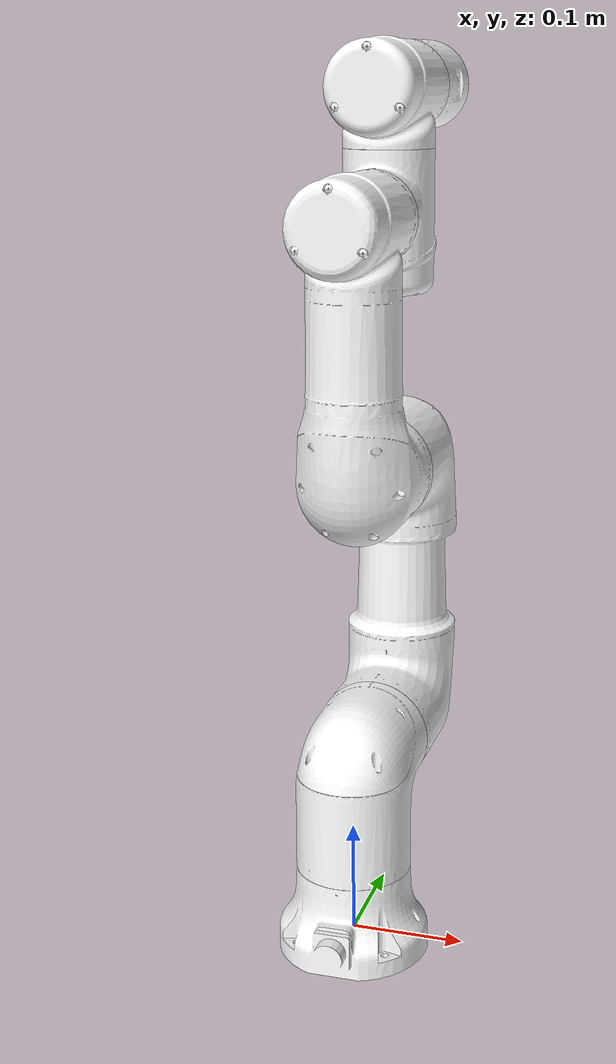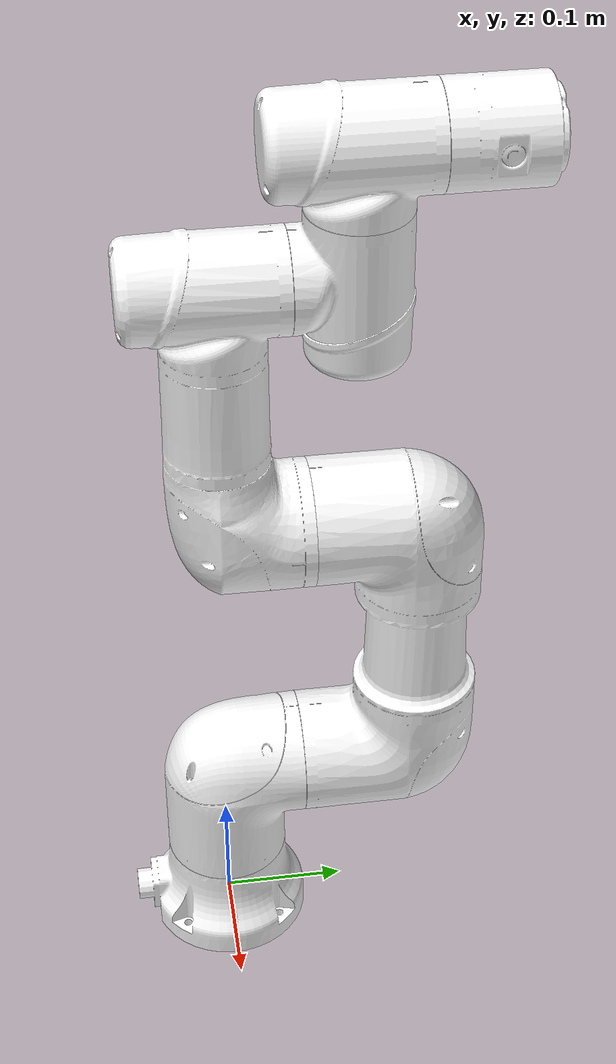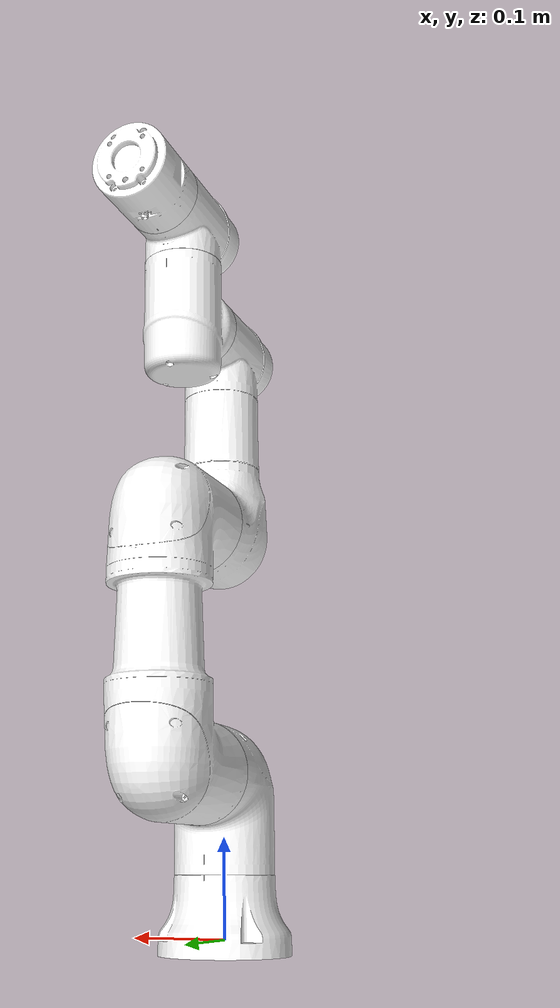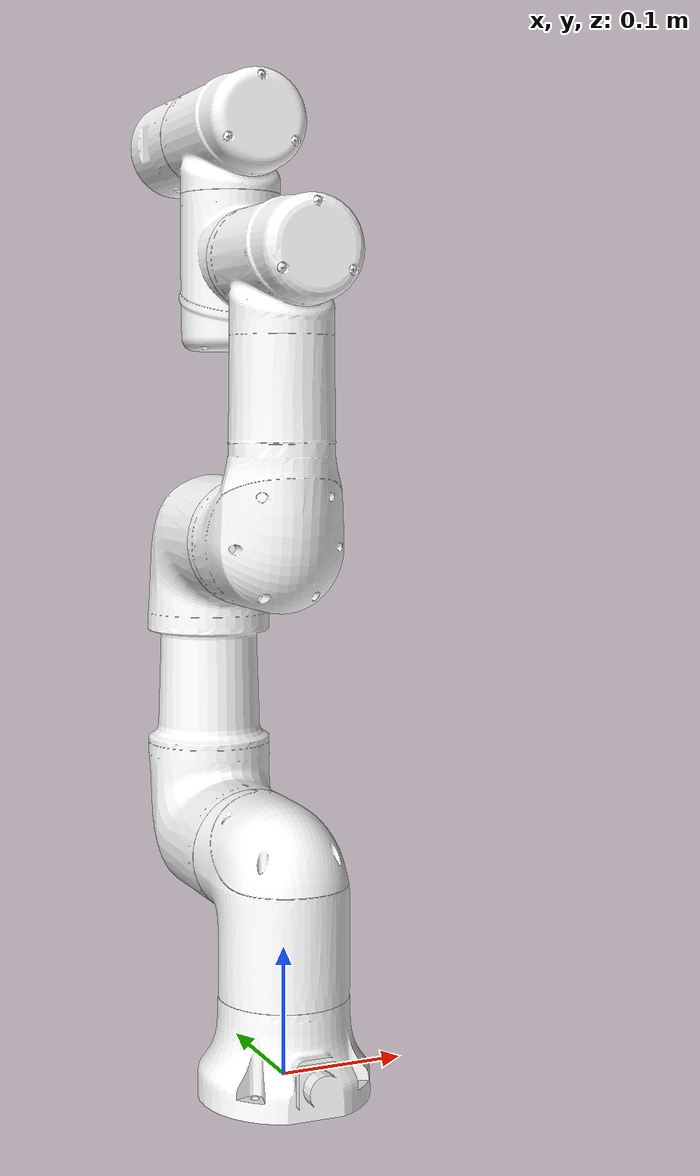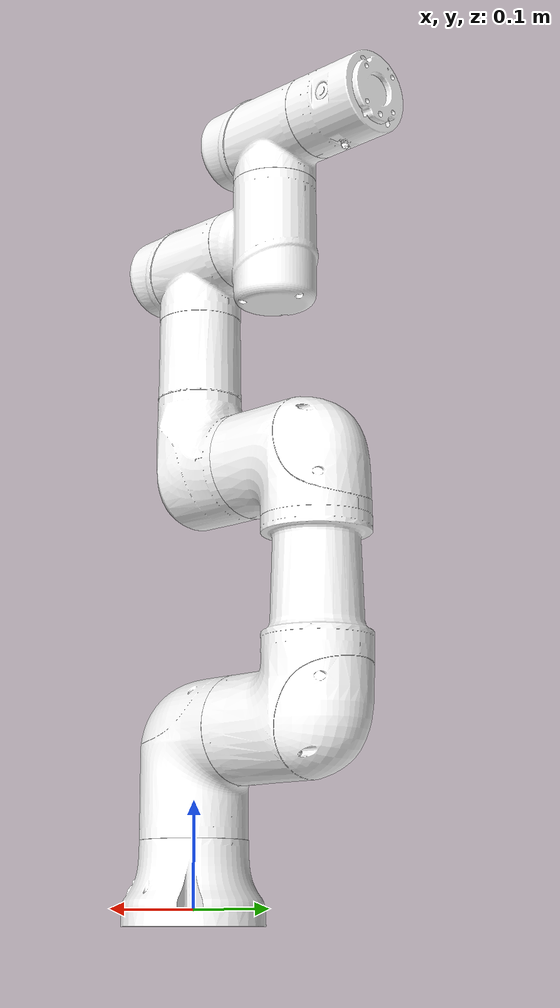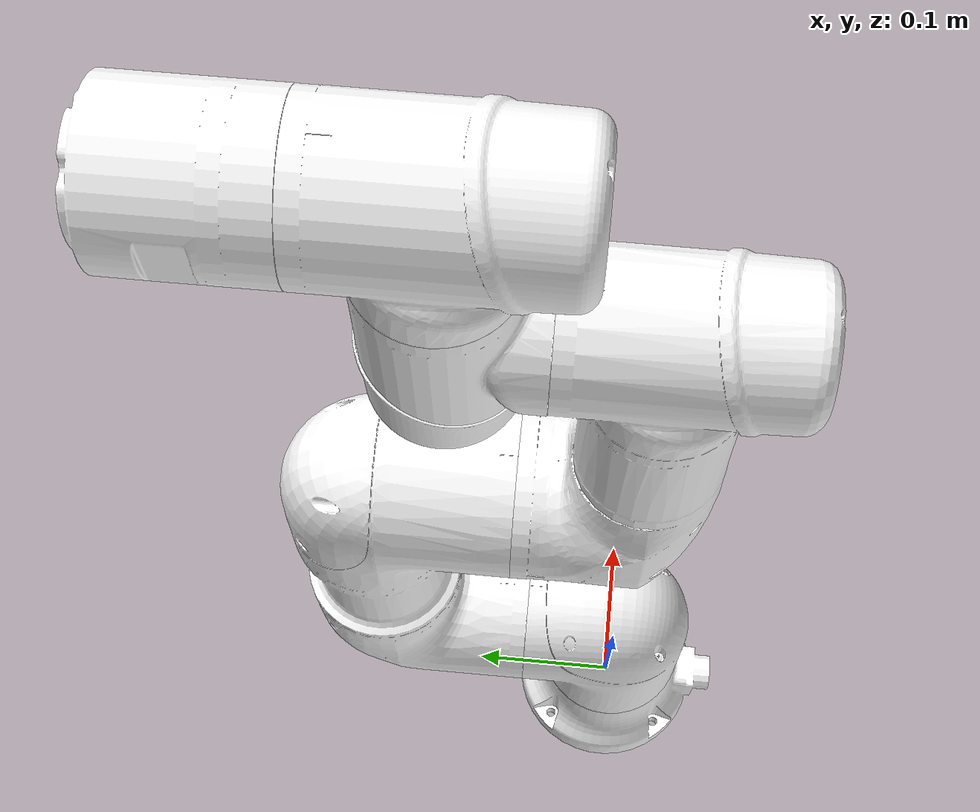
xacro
<?xml version="1.0"?>
<robot xmlns:xacro="http://www.ros.org/wiki/xacro" name="s3_60_eco_2024">
    <xacro:arg name="initial_positions_file" default="initial_positions.yaml" />

    <!-- Import s3_60_eco_2024 urdf file -->
    <xacro:include filename="$(find s3_60_eco_2024)/urdf/s3_60_eco_2024.urdf" />

    <!-- Import control_xacro -->
    <xacro:include filename="s3_60_eco_2024.ros2_control.xacro" />

    <xacro:s3_60_eco_2024_ros2_control name="FakeSystem" initial_positions_file="$(arg initial_positions_file)"/>

</robot>

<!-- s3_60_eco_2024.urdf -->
<robot
  name="s3_60_eco_2024">

  <!-- Fixed joint connecting base_footprint to base_link -->
  <link
    name="base_link">
    <inertial>
      <origin
        xyz="0 -0 0"
        rpy="0 0 0" />
      <mass
        value="0.78541" />
      <inertia
        ixx="0.0010933"
        ixy="3.2853E-08"
        ixz="-1.7363E-07"
        iyy="0.0010241"
        iyz="1.1425E-06"
        izz="0.0014616" />
    </inertial>
    <visual>
      <origin
        xyz="0 0 0"
        rpy="0 0 0" />
      <geometry>
        <mesh
          filename="package://s3_60_eco_2024/meshes/base_link.STL" />
      </geometry>
      <material
        name="">
        <color
          rgba="1 1 1 1" />
      </material>
    </visual>
    <collision>
      <origin
        xyz="0 0 0"
        rpy="0 0 0" />
      <geometry>
        <mesh
          filename="package://s3_60_eco_2024/meshes/base_link.STL" />
      </geometry>
    </collision>
  </link>
  <link
    name="link1">
    <inertial>
      <origin
        xyz="0 0.01736 -0.03468"
        rpy="0 0 0" />
      <mass
        value="2.68" />
      <inertia
        ixx="0.0063062"
        ixy="1E-13"
        ixz="4E-14"
        iyy="0.0063062"
        iyz="-5.47E-12"
        izz="3.8604E-09" />
    </inertial>
    <visual>
      <origin
        xyz="0 0 0"
        rpy="0 0 0" />
      <geometry>
        <mesh
          filename="package://s3_60_eco_2024/meshes/link1.STL" />
      </geometry>
      <material
        name="">
        <color
          rgba="1 1 1 1" />
      </material>
    </visual>
    <collision>
      <origin
        xyz="0 0 0"
        rpy="0 0 0" />
      <geometry>
        <mesh
          filename="package://s3_60_eco_2024/meshes/link1.STL" />
      </geometry>
    </collision>
  </link>
  <joint
    name="joint1"
    type="revolute">
    <origin
      xyz="0 0 0.1612"
      rpy="0 0 0" />
    <parent
      link="base_link" />
    <child
      link="link1" />
    <axis
      xyz="0 0 1" />
    <limit
      lower="-3.49"
      upper="3.49"
      effort="1000"
      velocity="100" />
  </joint>
  <link
    name="link2">
    <inertial>
      <origin
        xyz="0.164358816 -0.003811846 -0.036830158"
        rpy="0 0 0" />
      <mass
        value="4.91000729" />
      <inertia
        ixx="0.03174634313"
        ixy="-0.0133850739"
        ixz="0.02099061606"
        iyy="0.04209164764"
        iyz="0.01439168907"
        izz="0.0286995883" />
    </inertial>
    <visual>
      <origin
        xyz="0 0 0"
        rpy="0 0 0" />
      <geometry>
        <mesh
          filename="package://s3_60_eco_2024/meshes/link2.STL" />
      </geometry>
      <material
        name="">
        <color
          rgba="1 1 1 1" />
      </material>
    </visual>
    <collision>
      <origin
        xyz="0 0 0"
        rpy="0 0 0" />
      <geometry>
        <mesh
          filename="package://s3_60_eco_2024/meshes/link2.STL" />
      </geometry>
    </collision>
  </link>
  <joint
    name="joint2"
    type="revolute">
    <origin
      xyz="0 0.1625 0"
      rpy="-1.5708 -1.5708 -0" />
    <parent
      link="link1" />
    <child
      link="link2" />
    <axis
      xyz="0 0 1" />
    <limit
      lower="-3.49"
      upper="3.49"
      effort="1000"
      velocity="100" />
  </joint>
  <link
    name="link3">
    <inertial>
      <origin
        xyz="0.14259 0.0041909 0.019663"
        rpy="0 0 0" />
      <mass
        value="2.8189" />
      <inertia
        ixx="0.010113"
        ixy="-0.004051"
        ixz="0.013325"
        iyy="0.028438"
        iyz="0.0028144"
        izz="0.020036" />
    </inertial>
    <visual>
      <origin
        xyz="0 0 0"
        rpy="0 0 0" />
      <geometry>
        <mesh
          filename="package://s3_60_eco_2024/meshes/link3.STL" />
      </geometry>
      <material
        name="">
        <color
          rgba="1 1 1 1" />
      </material>
    </visual>
    <collision>
      <origin
        xyz="0 0 0"
        rpy="0 0 0" />
      <geometry>
        <mesh
          filename="package://s3_60_eco_2024/meshes/link3.STL" />
      </geometry>
    </collision>
  </link>
  <joint
    name="joint3"
    type="revolute">
    <origin
      xyz="0.249 0 -0.158"
      rpy="0 0 0" />
    <parent
      link="link2" />
    <child
      link="link3" />
    <axis
      xyz="0 0 1" />
    <limit
      lower="-2.84"
      upper="2.84"
      effort="1000"
      velocity="100.0" />
  </joint>
  <link
    name="link4">
    <inertial>
      <origin
        xyz="0.003938771 0.011270604 0.011220216"
        rpy="0 0 0" />
      <mass
        value="1.6405" />
      <inertia
        ixx="0.004198595"
        ixy="-0.001233426"
        ixz="-0.00171508"
        iyy="0.00383027"
        iyz="-0.00199017"
        izz="0.002494199" />
    </inertial>
    <visual>
      <origin
        xyz="0 0 0"
        rpy="0 0 0" />
      <geometry>
        <mesh
          filename="package://s3_60_eco_2024/meshes/link4.STL" />
      </geometry>
      <material
        name="">
        <color
          rgba="1 1 1 1" />
      </material>
    </visual>
    <collision>
      <origin
        xyz="0 0 0"
        rpy="0 0 0" />
      <geometry>
        <mesh
          filename="package://s3_60_eco_2024/meshes/link4.STL" />
      </geometry>
    </collision>
  </link>
  <joint
    name="joint4"
    type="revolute">
    <origin
      xyz="0.2208 0 0.106"
      rpy="3.1416 0 1.5708" />
    <parent
      link="link3" />
    <child
      link="link4" />
    <axis
      xyz="0 0 1" />
    <limit
      lower="-3.49"
      upper="3.49"
      effort="1000"
      velocity="100.0" />
  </joint>
  <link
    name="link5">
    <inertial>
      <origin
        xyz="-0.006333829 -0.011334075 0.005137465"
        rpy="0 0 0" />
      <mass
        value="1.64157902" />
      <inertia
        ixx="0.00011746"
        ixy="0.000351853"
        ixz="-0.000369981"
        iyy="0.0022811"
        iyz="5.8655E-05"
        izz="0.002275203" />
    </inertial>
    <visual>
      <origin
        xyz="0 0 0"
        rpy="0 0 0" />
      <geometry>
        <mesh
          filename="package://s3_60_eco_2024/meshes/link5.STL" />
      </geometry>
      <material
        name="">
        <color
          rgba="1 1 1 1" />
      </material>
    </visual>
    <collision>
      <origin
        xyz="0 0 0"
        rpy="0 0 0" />
      <geometry>
        <mesh
          filename="package://s3_60_eco_2024/meshes/link5.STL" />
      </geometry>
    </collision>
  </link>
  <joint
    name="joint5"
    type="revolute">
    <origin
      xyz="0 0.106 0"
      rpy="1.5708 0 0" />
    <parent
      link="link4" />
    <child
      link="link5" />
    <axis
      xyz="0 0 1" />
    <limit
      lower="-3.49"
      upper="3.49"
      effort="1000"
      velocity="100.0" />
  </joint>
  <link
    name="link6">
    <inertial>
      <origin
        xyz="0.010096671 -0.013004453 -0.030448264"
        rpy="0 0 0" />
      <mass
        value="0.53289427" />
      <inertia
        ixx="0.000181326"
        ixy="0.000407975"
        ixz="-3.9175E-05"
        iyy="0.000928056"
        iyz="1.7252E-05"
        izz="0.001106067" />
    </inertial>
    <visual>
      <origin
        xyz="0 0 0"
        rpy="0 0 0" />
      <geometry>
        <mesh
          filename="package://s3_60_eco_2024/meshes/link6.STL" />
      </geometry>
      <material
        name="">
        <color
          rgba="1 1 1 1" />
      </material>
    </visual>
    <collision>
      <origin
        xyz="0 0 0"
        rpy="0 0 0" />
      <geometry>
        <mesh
          filename="package://s3_60_eco_2024/meshes/link6.STL" />
      </geometry>
    </collision>
  </link>
  <joint
    name="joint6"
    type="revolute">
    <origin
      xyz="0 -0.1385 -0.00039444"
      rpy="1.5708 0 0" />
    <parent
      link="link5" />
    <child
      link="link6" />
    <axis
      xyz="0 0 1" />
    <limit
      lower="-3.49"
      upper="3.49"
      effort="1000"
      velocity="100.0" />
  </joint>
</robot>
